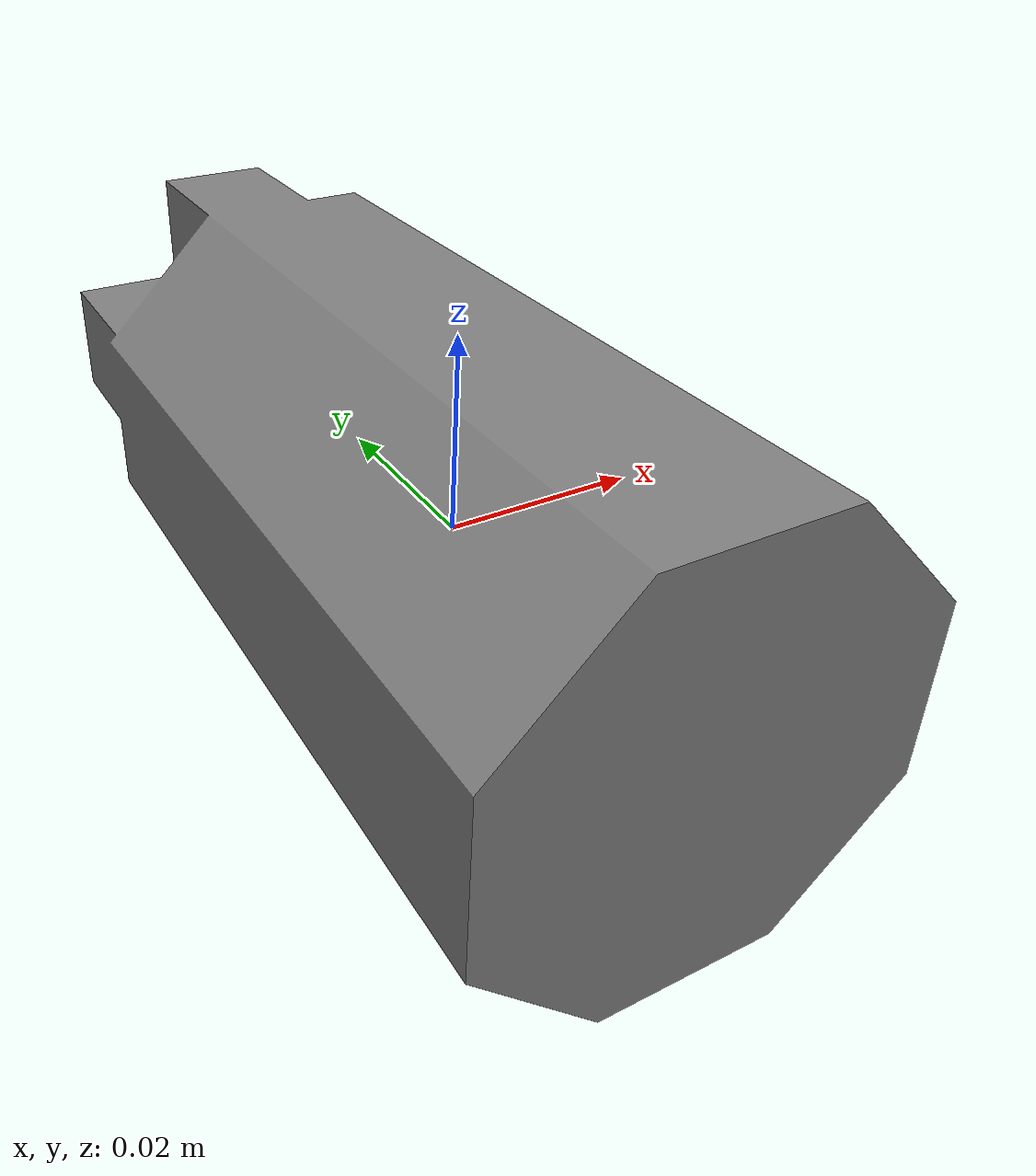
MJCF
<mujoco model="peg-hole">
	<default>
		<default class="visual">
			<geom type="mesh" contype="0" conaffinity="0"/>
		</default>
		<default class="collision">
			<geom type="mesh" rgba="0.5 0.5 0.5 0.0" density="100"/>
		</default>
	</default>
	<asset>
		<mesh name="Cross_peg_visual" file="meshes/Cross_octagonal-thin_cap.obj" scale="1.00 1.00 1.00"/>
		<mesh name="Cross_peg_0" file="meshes/collision_meshes/Cross_octagonal-thin_cap_decomp_0.obj" scale="1.00 1.00 1.00"/>
		<mesh name="Cross_peg_1" file="meshes/collision_meshes/Cross_octagonal-thin_cap_decomp_1.obj" scale="1.00 1.00 1.00"/>
		<mesh name="Cross_peg_2" file="meshes/collision_meshes/Cross_octagonal-thin_cap_decomp_2.obj" scale="1.00 1.00 1.00"/>
		<mesh name="Cross_peg_3" file="meshes/collision_meshes/Cross_octagonal-thin_cap_decomp_3.obj" scale="1.00 1.00 1.00"/>
		<mesh name="Cross_peg_4" file="meshes/collision_meshes/Cross_octagonal-thin_cap_decomp_4.obj" scale="1.00 1.00 1.00"/>
		<mesh name="Cross_peg_5" file="meshes/collision_meshes/Cross_octagonal-thin_cap_decomp_5.obj" scale="1.00 1.00 1.00"/>
		<mesh name="Cross_peg_6" file="meshes/collision_meshes/Cross_octagonal-thin_cap_decomp_6.obj" scale="1.00 1.00 1.00"/>
		<mesh name="Cross_peg_7" file="meshes/collision_meshes/Cross_octagonal-thin_cap_decomp_7.obj" scale="1.00 1.00 1.00"/>
		<mesh name="Cross_peg_8" file="meshes/collision_meshes/Cross_octagonal-thin_cap_decomp_8.obj" scale="1.00 1.00 1.00"/>
		<mesh name="Cross_peg_9" file="meshes/collision_meshes/Cross_octagonal-thin_cap_decomp_9.obj" scale="1.00 1.00 1.00"/>
		<mesh name="Cross_peg_10" file="meshes/collision_meshes/Cross_octagonal-thin_cap_decomp_10.obj" scale="1.00 1.00 1.00"/>
	</asset>
	<worldbody>
		<body name="Cross_peg">
			<body name="object">
				<geom name="Cross_peg_0" class="collision" friction="0.01 0.3 0.0001" mesh="Cross_peg_0" group="0"/>
				<geom name="Cross_peg_1" class="collision" friction="0.01 0.3 0.0001" mesh="Cross_peg_1" group="0"/>
				<geom name="Cross_peg_2" class="collision" friction="0.01 0.3 0.0001" mesh="Cross_peg_2" group="0"/>
				<geom name="Cross_peg_3" class="collision" friction="0.01 0.3 0.0001" mesh="Cross_peg_3" group="0"/>
				<geom name="Cross_peg_4" class="collision" friction="0.01 0.3 0.0001" mesh="Cross_peg_4" group="0"/>
				<geom name="Cross_peg_5" class="collision" friction="0.01 0.3 0.0001" mesh="Cross_peg_5" group="0"/>
				<geom name="Cross_peg_6" class="collision" friction="0.01 0.3 0.0001" mesh="Cross_peg_6" group="0"/>
				<geom name="Cross_peg_7" class="collision" friction="0.01 0.3 0.0001" mesh="Cross_peg_7" group="0"/>
				<geom name="Cross_peg_8" class="collision" friction="0.01 0.3 0.0001" mesh="Cross_peg_8" group="0"/>
				<geom name="Cross_peg_9" class="collision" friction="0.01 0.3 0.0001" mesh="Cross_peg_9" group="0"/>
				<geom name="Cross_peg_10" class="collision" friction="0.01 0.3 0.0001" mesh="Cross_peg_10" group="0"/>
				<geom name="Cross_peg_visual" class="visual" mesh="Cross_peg_visual" group="1"/>
			</body>
			<site rgba="0 0 0 0" size="0.005" pos="0 0 0" name="bottom_site"/>
			<site rgba="0 0 0 0" size="0.005" pos="0 0 0" name="top_site"/>
			<site rgba="0 0 0 0" size="0.005" pos="0 0 0" name="horizontal_radius_site"/>
		</body>
	</worldbody>
</mujoco>
